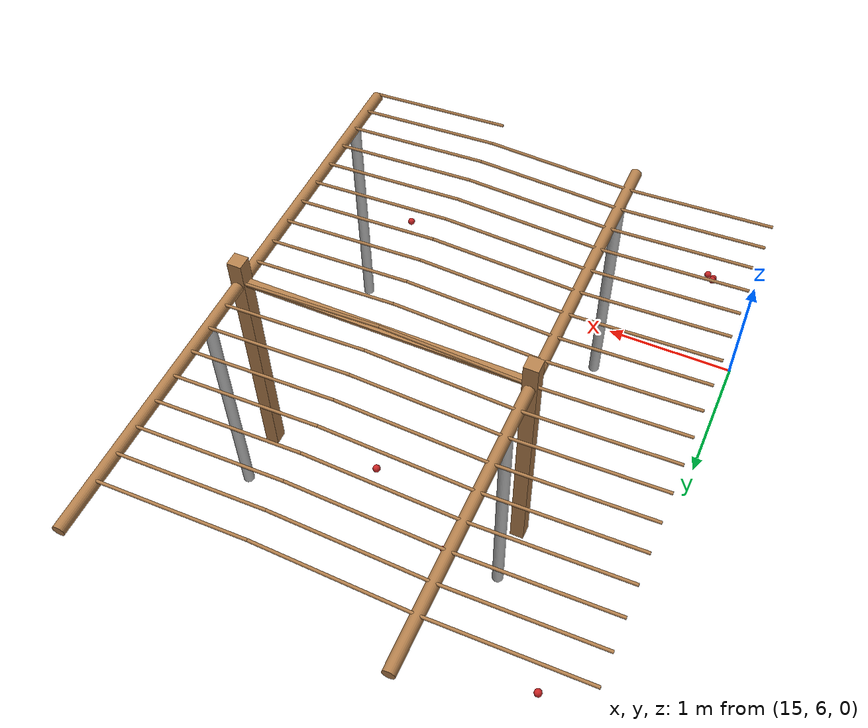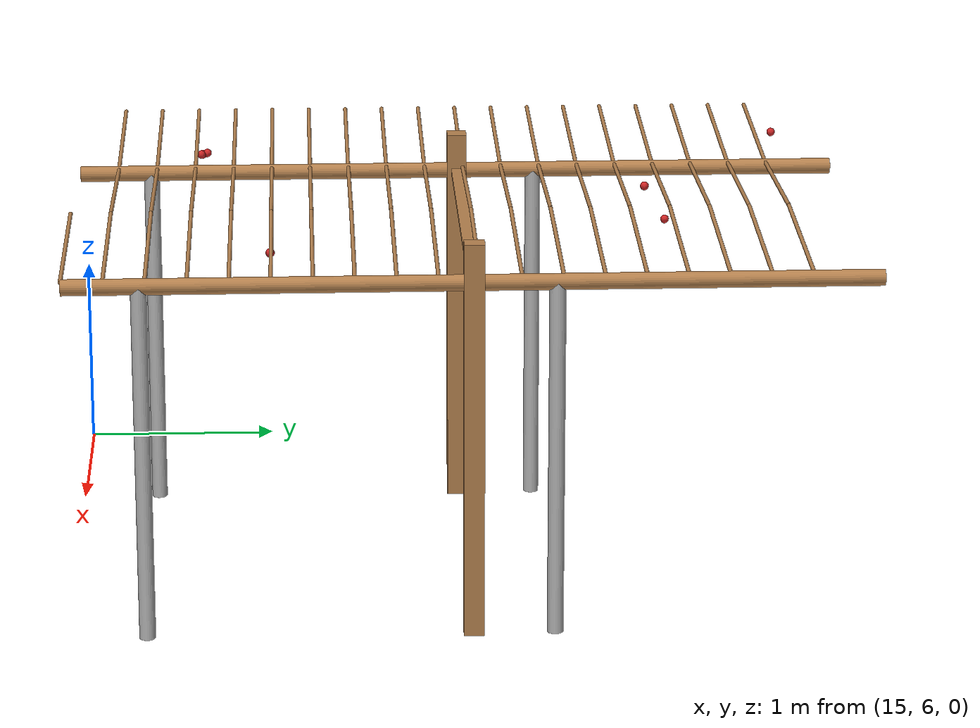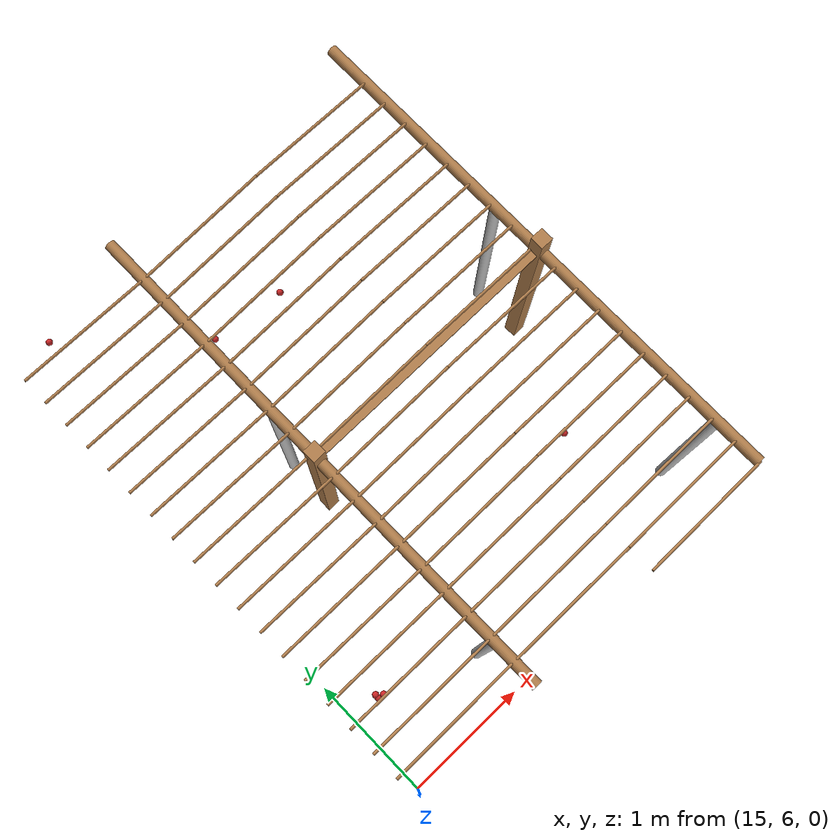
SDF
<sdf version="1.4">
 <model name="pergola">
  <include><name>post_92</name><pose>16.0 8.0 0 0 0 0</pose><uri>model://post</uri></include>
  <include><name>post_103</name><pose>18.0 8.0 0 0 0 0</pose><uri>model://post</uri></include>
  <link name="beam_92">
   <pose>17.0 8.0 1.81 0 0 0</pose>
   <collision name="collision"><geometry><box><size>2.0 0.06 0.02</size></box></geometry></collision>
   <visual name="visual">
    <geometry><box><size>2.0 0.06 0.02</size></box></geometry>
    <material><script><name>Gazebo/Wood</name></script></material>
   </visual>
   <inertial>
    <mass>5</mass>
    <inertia>
     <ixx>0.0016666666666666668</ixx>
     <ixy>0.0</ixy>
     <ixz>0.0</ixz>
     <iyy>1.6681666666666664</iyy>
     <iyz>0.0</iyz>
     <izz>1.6668333333333332</izz>
    </inertia>
   </inertial>
  </link>
  <include><name>tree_83</name><pose>16.0 6.4 0 0 0 0</pose><uri>model://tree_trunk</uri></include>
  <include><name>tree_84</name><pose>16.0 8.4 0 0 0 0</pose><uri>model://tree_trunk</uri></include>
  <include><name>tree_93</name><pose>18.0 6.4 0 0 0 0</pose><uri>model://tree_trunk</uri></include>
  <include><name>tree_94</name><pose>18.0 8.4 0 0 0 0</pose><uri>model://tree_trunk</uri></include>
  <link name="baseBranch_83">
   <pose>16.0 7.0 1.8 1.5707963267948966 0 0</pose>
   <collision name="collision">
    <geometry><cylinder><radius>0.04</radius><length>1.94</length></cylinder></geometry>
   </collision>
   <visual name="visual">
    <geometry><cylinder><radius>0.04</radius><length>1.94</length></cylinder></geometry>
    <material><script><name>Gazebo/WoodFloor</name></script></material>
   </visual>
   <inertial>
    <mass>10</mass>
    <inertia>
     <ixx>3.140333333333333</ixx>
     <ixy>0.0</ixy>
     <ixz>0.0</ixz>
     <iyy>3.140333333333333</iyy>
     <iyz>0.0</iyz>
     <izz>0.008</izz>
    </inertia>
   </inertial>
  </link>
  <link name="baseBranch_84">
   <pose>16.0 9.0 1.8 1.5707963267948966 0 0</pose>
   <collision name="collision">
    <geometry><cylinder><radius>0.04</radius><length>1.94</length></cylinder></geometry>
   </collision>
   <visual name="visual">
    <geometry><cylinder><radius>0.04</radius><length>1.94</length></cylinder></geometry>
    <material><script><name>Gazebo/WoodFloor</name></script></material>
   </visual>
   <inertial>
    <mass>10</mass>
    <inertia>
     <ixx>3.140333333333333</ixx>
     <ixy>0.0</ixy>
     <ixz>0.0</ixz>
     <iyy>3.140333333333333</iyy>
     <iyz>0.0</iyz>
     <izz>0.008</izz>
    </inertia>
   </inertial>
  </link>
  <link name="baseBranch_93">
   <pose>18.0 7.0 1.8 1.5707963267948966 0 0</pose>
   <collision name="collision">
    <geometry><cylinder><radius>0.04</radius><length>1.94</length></cylinder></geometry>
   </collision>
   <visual name="visual">
    <geometry><cylinder><radius>0.04</radius><length>1.94</length></cylinder></geometry>
    <material><script><name>Gazebo/WoodFloor</name></script></material>
   </visual>
   <inertial>
    <mass>10</mass>
    <inertia>
     <ixx>3.140333333333333</ixx>
     <ixy>0.0</ixy>
     <ixz>0.0</ixz>
     <iyy>3.140333333333333</iyy>
     <iyz>0.0</iyz>
     <izz>0.008</izz>
    </inertia>
   </inertial>
  </link>
  <link name="baseBranch_94">
   <pose>18.0 9.0 1.8 1.5707963267948966 0 0</pose>
   <collision name="collision">
    <geometry><cylinder><radius>0.04</radius><length>1.94</length></cylinder></geometry>
   </collision>
   <visual name="visual">
    <geometry><cylinder><radius>0.04</radius><length>1.94</length></cylinder></geometry>
    <material><script><name>Gazebo/WoodFloor</name></script></material>
   </visual>
   <inertial>
    <mass>10</mass>
    <inertia>
     <ixx>3.140333333333333</ixx>
     <ixy>0.0</ixy>
     <ixz>0.0</ixz>
     <iyy>3.140333333333333</iyy>
     <iyz>0.0</iyz>
     <izz>0.008</izz>
    </inertia>
   </inertial>
  </link>
  <link name="vine_1463">
   <pose>15.5 6.23 1.85 0 -1.5208379310729538 0</pose>
   <collision name="collision">
    <geometry><cylinder><radius>0.01</radius><length>1.0012492197250393</length></cylinder></geometry>
   </collision>
   <visual name="visual">
    <geometry><cylinder><radius>0.01</radius><length>1.0012492197250393</length></cylinder></geometry>
    <material><script><name>Gazebo/WoodFloor</name></script></material>
   </visual>
   <inertial>
    <mass>5</mass>
    <inertia>
     <ixx>0.41783333333333345</ixx>
     <ixy>0.0</ixy>
     <ixz>0.0</ixz>
     <iyy>0.41783333333333345</iyy>
     <iyz>0.0</iyz>
     <izz>0.00025</izz>
    </inertia>
   </inertial>
  </link>
  <link name="vine_1465">
   <pose>15.5 6.430000000000001 1.85 0 -1.5208379310729538 0</pose>
   <collision name="collision">
    <geometry><cylinder><radius>0.01</radius><length>1.0012492197250393</length></cylinder></geometry>
   </collision>
   <visual name="visual">
    <geometry><cylinder><radius>0.01</radius><length>1.0012492197250393</length></cylinder></geometry>
    <material><script><name>Gazebo/WoodFloor</name></script></material>
   </visual>
   <inertial>
    <mass>5</mass>
    <inertia>
     <ixx>0.41783333333333345</ixx>
     <ixy>0.0</ixy>
     <ixz>0.0</ixz>
     <iyy>0.41783333333333345</iyy>
     <iyz>0.0</iyz>
     <izz>0.00025</izz>
    </inertia>
   </inertial>
  </link>
  <link name="vine_1467">
   <pose>15.5 6.630000000000001 1.85 0 -1.5208379310729538 0</pose>
   <collision name="collision">
    <geometry><cylinder><radius>0.01</radius><length>1.0012492197250393</length></cylinder></geometry>
   </collision>
   <visual name="visual">
    <geometry><cylinder><radius>0.01</radius><length>1.0012492197250393</length></cylinder></geometry>
    <material><script><name>Gazebo/WoodFloor</name></script></material>
   </visual>
   <inertial>
    <mass>5</mass>
    <inertia>
     <ixx>0.41783333333333345</ixx>
     <ixy>0.0</ixy>
     <ixz>0.0</ixz>
     <iyy>0.41783333333333345</iyy>
     <iyz>0.0</iyz>
     <izz>0.00025</izz>
    </inertia>
   </inertial>
  </link>
  <link name="vine_1469">
   <pose>15.5 6.830000000000001 1.85 0 -1.5208379310729538 0</pose>
   <collision name="collision">
    <geometry><cylinder><radius>0.01</radius><length>1.0012492197250393</length></cylinder></geometry>
   </collision>
   <visual name="visual">
    <geometry><cylinder><radius>0.01</radius><length>1.0012492197250393</length></cylinder></geometry>
    <material><script><name>Gazebo/WoodFloor</name></script></material>
   </visual>
   <inertial>
    <mass>5</mass>
    <inertia>
     <ixx>0.41783333333333345</ixx>
     <ixy>0.0</ixy>
     <ixz>0.0</ixz>
     <iyy>0.41783333333333345</iyy>
     <iyz>0.0</iyz>
     <izz>0.00025</izz>
    </inertia>
   </inertial>
  </link>
  <link name="vine_1471">
   <pose>15.5 7.03 1.85 0 -1.5208379310729538 0</pose>
   <collision name="collision">
    <geometry><cylinder><radius>0.01</radius><length>1.0012492197250393</length></cylinder></geometry>
   </collision>
   <visual name="visual">
    <geometry><cylinder><radius>0.01</radius><length>1.0012492197250393</length></cylinder></geometry>
    <material><script><name>Gazebo/WoodFloor</name></script></material>
   </visual>
   <inertial>
    <mass>5</mass>
    <inertia>
     <ixx>0.41783333333333345</ixx>
     <ixy>0.0</ixy>
     <ixz>0.0</ixz>
     <iyy>0.41783333333333345</iyy>
     <iyz>0.0</iyz>
     <izz>0.00025</izz>
    </inertia>
   </inertial>
  </link>
  <link name="vine_1473">
   <pose>15.5 7.23 1.85 0 -1.5208379310729538 0</pose>
   <collision name="collision">
    <geometry><cylinder><radius>0.01</radius><length>1.0012492197250393</length></cylinder></geometry>
   </collision>
   <visual name="visual">
    <geometry><cylinder><radius>0.01</radius><length>1.0012492197250393</length></cylinder></geometry>
    <material><script><name>Gazebo/WoodFloor</name></script></material>
   </visual>
   <inertial>
    <mass>5</mass>
    <inertia>
     <ixx>0.41783333333333345</ixx>
     <ixy>0.0</ixy>
     <ixz>0.0</ixz>
     <iyy>0.41783333333333345</iyy>
     <iyz>0.0</iyz>
     <izz>0.00025</izz>
    </inertia>
   </inertial>
  </link>
  <link name="vine_1475">
   <pose>15.5 7.430000000000001 1.85 0 -1.5208379310729538 0</pose>
   <collision name="collision">
    <geometry><cylinder><radius>0.01</radius><length>1.0012492197250393</length></cylinder></geometry>
   </collision>
   <visual name="visual">
    <geometry><cylinder><radius>0.01</radius><length>1.0012492197250393</length></cylinder></geometry>
    <material><script><name>Gazebo/WoodFloor</name></script></material>
   </visual>
   <inertial>
    <mass>5</mass>
    <inertia>
     <ixx>0.41783333333333345</ixx>
     <ixy>0.0</ixy>
     <ixz>0.0</ixz>
     <iyy>0.41783333333333345</iyy>
     <iyz>0.0</iyz>
     <izz>0.00025</izz>
    </inertia>
   </inertial>
  </link>
  <link name="vine_1477">
   <pose>15.5 7.630000000000001 1.85 0 -1.5208379310729538 0</pose>
   <collision name="collision">
    <geometry><cylinder><radius>0.01</radius><length>1.0012492197250393</length></cylinder></geometry>
   </collision>
   <visual name="visual">
    <geometry><cylinder><radius>0.01</radius><length>1.0012492197250393</length></cylinder></geometry>
    <material><script><name>Gazebo/WoodFloor</name></script></material>
   </visual>
   <inertial>
    <mass>5</mass>
    <inertia>
     <ixx>0.41783333333333345</ixx>
     <ixy>0.0</ixy>
     <ixz>0.0</ixz>
     <iyy>0.41783333333333345</iyy>
     <iyz>0.0</iyz>
     <izz>0.00025</izz>
    </inertia>
   </inertial>
  </link>
  <link name="vine_1479">
   <pose>15.5 7.830000000000001 1.85 0 -1.5208379310729538 0</pose>
   <collision name="collision">
    <geometry><cylinder><radius>0.01</radius><length>1.0012492197250393</length></cylinder></geometry>
   </collision>
   <visual name="visual">
    <geometry><cylinder><radius>0.01</radius><length>1.0012492197250393</length></cylinder></geometry>
    <material><script><name>Gazebo/WoodFloor</name></script></material>
   </visual>
   <inertial>
    <mass>5</mass>
    <inertia>
     <ixx>0.41783333333333345</ixx>
     <ixy>0.0</ixy>
     <ixz>0.0</ixz>
     <iyy>0.41783333333333345</iyy>
     <iyz>0.0</iyz>
     <izz>0.00025</izz>
    </inertia>
   </inertial>
  </link>
  <link name="vine_1481">
   <pose>15.5 8.03 1.85 0 -1.5208379310729538 0</pose>
   <collision name="collision">
    <geometry><cylinder><radius>0.01</radius><length>1.0012492197250393</length></cylinder></geometry>
   </collision>
   <visual name="visual">
    <geometry><cylinder><radius>0.01</radius><length>1.0012492197250393</length></cylinder></geometry>
    <material><script><name>Gazebo/WoodFloor</name></script></material>
   </visual>
   <inertial>
    <mass>5</mass>
    <inertia>
     <ixx>0.41783333333333345</ixx>
     <ixy>0.0</ixy>
     <ixz>0.0</ixz>
     <iyy>0.41783333333333345</iyy>
     <iyz>0.0</iyz>
     <izz>0.00025</izz>
    </inertia>
   </inertial>
  </link>
  <link name="vine_1483">
   <pose>15.5 8.23 1.85 0 -1.5208379310729538 0</pose>
   <collision name="collision">
    <geometry><cylinder><radius>0.01</radius><length>1.0012492197250393</length></cylinder></geometry>
   </collision>
   <visual name="visual">
    <geometry><cylinder><radius>0.01</radius><length>1.0012492197250393</length></cylinder></geometry>
    <material><script><name>Gazebo/WoodFloor</name></script></material>
   </visual>
   <inertial>
    <mass>5</mass>
    <inertia>
     <ixx>0.41783333333333345</ixx>
     <ixy>0.0</ixy>
     <ixz>0.0</ixz>
     <iyy>0.41783333333333345</iyy>
     <iyz>0.0</iyz>
     <izz>0.00025</izz>
    </inertia>
   </inertial>
  </link>
  <link name="vine_1485">
   <pose>15.5 8.43 1.85 0 -1.5208379310729538 0</pose>
   <collision name="collision">
    <geometry><cylinder><radius>0.01</radius><length>1.0012492197250393</length></cylinder></geometry>
   </collision>
   <visual name="visual">
    <geometry><cylinder><radius>0.01</radius><length>1.0012492197250393</length></cylinder></geometry>
    <material><script><name>Gazebo/WoodFloor</name></script></material>
   </visual>
   <inertial>
    <mass>5</mass>
    <inertia>
     <ixx>0.41783333333333345</ixx>
     <ixy>0.0</ixy>
     <ixz>0.0</ixz>
     <iyy>0.41783333333333345</iyy>
     <iyz>0.0</iyz>
     <izz>0.00025</izz>
    </inertia>
   </inertial>
  </link>
  <link name="vine_1487">
   <pose>15.5 8.629999999999999 1.85 0 -1.5208379310729538 0</pose>
   <collision name="collision">
    <geometry><cylinder><radius>0.01</radius><length>1.0012492197250393</length></cylinder></geometry>
   </collision>
   <visual name="visual">
    <geometry><cylinder><radius>0.01</radius><length>1.0012492197250393</length></cylinder></geometry>
    <material><script><name>Gazebo/WoodFloor</name></script></material>
   </visual>
   <inertial>
    <mass>5</mass>
    <inertia>
     <ixx>0.41783333333333345</ixx>
     <ixy>0.0</ixy>
     <ixz>0.0</ixz>
     <iyy>0.41783333333333345</iyy>
     <iyz>0.0</iyz>
     <izz>0.00025</izz>
    </inertia>
   </inertial>
  </link>
  <link name="vine_1489">
   <pose>15.5 8.83 1.85 0 -1.5208379310729538 0</pose>
   <collision name="collision">
    <geometry><cylinder><radius>0.01</radius><length>1.0012492197250393</length></cylinder></geometry>
   </collision>
   <visual name="visual">
    <geometry><cylinder><radius>0.01</radius><length>1.0012492197250393</length></cylinder></geometry>
    <material><script><name>Gazebo/WoodFloor</name></script></material>
   </visual>
   <inertial>
    <mass>5</mass>
    <inertia>
     <ixx>0.41783333333333345</ixx>
     <ixy>0.0</ixy>
     <ixz>0.0</ixz>
     <iyy>0.41783333333333345</iyy>
     <iyz>0.0</iyz>
     <izz>0.00025</izz>
    </inertia>
   </inertial>
  </link>
  <link name="vine_1491">
   <pose>15.5 9.03 1.85 0 -1.5208379310729538 0</pose>
   <collision name="collision">
    <geometry><cylinder><radius>0.01</radius><length>1.0012492197250393</length></cylinder></geometry>
   </collision>
   <visual name="visual">
    <geometry><cylinder><radius>0.01</radius><length>1.0012492197250393</length></cylinder></geometry>
    <material><script><name>Gazebo/WoodFloor</name></script></material>
   </visual>
   <inertial>
    <mass>5</mass>
    <inertia>
     <ixx>0.41783333333333345</ixx>
     <ixy>0.0</ixy>
     <ixz>0.0</ixz>
     <iyy>0.41783333333333345</iyy>
     <iyz>0.0</iyz>
     <izz>0.00025</izz>
    </inertia>
   </inertial>
  </link>
  <link name="vine_1493">
   <pose>15.5 9.23 1.85 0 -1.5208379310729538 0</pose>
   <collision name="collision">
    <geometry><cylinder><radius>0.01</radius><length>1.0012492197250393</length></cylinder></geometry>
   </collision>
   <visual name="visual">
    <geometry><cylinder><radius>0.01</radius><length>1.0012492197250393</length></cylinder></geometry>
    <material><script><name>Gazebo/WoodFloor</name></script></material>
   </visual>
   <inertial>
    <mass>5</mass>
    <inertia>
     <ixx>0.41783333333333345</ixx>
     <ixy>0.0</ixy>
     <ixz>0.0</ixz>
     <iyy>0.41783333333333345</iyy>
     <iyz>0.0</iyz>
     <izz>0.00025</izz>
    </inertia>
   </inertial>
  </link>
  <link name="vine_1495">
   <pose>15.5 9.43 1.85 0 -1.5208379310729538 0</pose>
   <collision name="collision">
    <geometry><cylinder><radius>0.01</radius><length>1.0012492197250393</length></cylinder></geometry>
   </collision>
   <visual name="visual">
    <geometry><cylinder><radius>0.01</radius><length>1.0012492197250393</length></cylinder></geometry>
    <material><script><name>Gazebo/WoodFloor</name></script></material>
   </visual>
   <inertial>
    <mass>5</mass>
    <inertia>
     <ixx>0.41783333333333345</ixx>
     <ixy>0.0</ixy>
     <ixz>0.0</ixz>
     <iyy>0.41783333333333345</iyy>
     <iyz>0.0</iyz>
     <izz>0.00025</izz>
    </inertia>
   </inertial>
  </link>
  <link name="vine_1497">
   <pose>15.5 9.63 1.85 0 -1.5208379310729538 0</pose>
   <collision name="collision">
    <geometry><cylinder><radius>0.01</radius><length>1.0012492197250393</length></cylinder></geometry>
   </collision>
   <visual name="visual">
    <geometry><cylinder><radius>0.01</radius><length>1.0012492197250393</length></cylinder></geometry>
    <material><script><name>Gazebo/WoodFloor</name></script></material>
   </visual>
   <inertial>
    <mass>5</mass>
    <inertia>
     <ixx>0.41783333333333345</ixx>
     <ixy>0.0</ixy>
     <ixz>0.0</ixz>
     <iyy>0.41783333333333345</iyy>
     <iyz>0.0</iyz>
     <izz>0.00025</izz>
    </inertia>
   </inertial>
  </link>
  <link name="vine_1661">
   <pose>17.5 6.03 1.85 0 -1.5208379310729538 0</pose>
   <collision name="collision">
    <geometry><cylinder><radius>0.01</radius><length>1.0012492197250393</length></cylinder></geometry>
   </collision>
   <visual name="visual">
    <geometry><cylinder><radius>0.01</radius><length>1.0012492197250393</length></cylinder></geometry>
    <material><script><name>Gazebo/WoodFloor</name></script></material>
   </visual>
   <inertial>
    <mass>5</mass>
    <inertia>
     <ixx>0.41783333333333345</ixx>
     <ixy>0.0</ixy>
     <ixz>0.0</ixz>
     <iyy>0.41783333333333345</iyy>
     <iyz>0.0</iyz>
     <izz>0.00025</izz>
    </inertia>
   </inertial>
  </link>
  <link name="vine_1662">
   <pose>16.5 6.23 1.85 0 1.5208379310729538 0</pose>
   <collision name="collision">
    <geometry><cylinder><radius>0.01</radius><length>1.0012492197250393</length></cylinder></geometry>
   </collision>
   <visual name="visual">
    <geometry><cylinder><radius>0.01</radius><length>1.0012492197250393</length></cylinder></geometry>
    <material><script><name>Gazebo/WoodFloor</name></script></material>
   </visual>
   <inertial>
    <mass>5</mass>
    <inertia>
     <ixx>0.41783333333333345</ixx>
     <ixy>0.0</ixy>
     <ixz>0.0</ixz>
     <iyy>0.41783333333333345</iyy>
     <iyz>0.0</iyz>
     <izz>0.00025</izz>
    </inertia>
   </inertial>
  </link>
  <link name="vine_1663">
   <pose>17.5 6.23 1.85 0 -1.5208379310729538 0</pose>
   <collision name="collision">
    <geometry><cylinder><radius>0.01</radius><length>1.0012492197250393</length></cylinder></geometry>
   </collision>
   <visual name="visual">
    <geometry><cylinder><radius>0.01</radius><length>1.0012492197250393</length></cylinder></geometry>
    <material><script><name>Gazebo/WoodFloor</name></script></material>
   </visual>
   <inertial>
    <mass>5</mass>
    <inertia>
     <ixx>0.41783333333333345</ixx>
     <ixy>0.0</ixy>
     <ixz>0.0</ixz>
     <iyy>0.41783333333333345</iyy>
     <iyz>0.0</iyz>
     <izz>0.00025</izz>
    </inertia>
   </inertial>
  </link>
  <link name="vine_1664">
   <pose>16.5 6.430000000000001 1.85 0 1.5208379310729538 0</pose>
   <collision name="collision">
    <geometry><cylinder><radius>0.01</radius><length>1.0012492197250393</length></cylinder></geometry>
   </collision>
   <visual name="visual">
    <geometry><cylinder><radius>0.01</radius><length>1.0012492197250393</length></cylinder></geometry>
    <material><script><name>Gazebo/WoodFloor</name></script></material>
   </visual>
   <inertial>
    <mass>5</mass>
    <inertia>
     <ixx>0.41783333333333345</ixx>
     <ixy>0.0</ixy>
     <ixz>0.0</ixz>
     <iyy>0.41783333333333345</iyy>
     <iyz>0.0</iyz>
     <izz>0.00025</izz>
    </inertia>
   </inertial>
  </link>
  <link name="vine_1665">
   <pose>17.5 6.430000000000001 1.85 0 -1.5208379310729538 0</pose>
   <collision name="collision">
    <geometry><cylinder><radius>0.01</radius><length>1.0012492197250393</length></cylinder></geometry>
   </collision>
   <visual name="visual">
    <geometry><cylinder><radius>0.01</radius><length>1.0012492197250393</length></cylinder></geometry>
    <material><script><name>Gazebo/WoodFloor</name></script></material>
   </visual>
   <inertial>
    <mass>5</mass>
    <inertia>
     <ixx>0.41783333333333345</ixx>
     <ixy>0.0</ixy>
     <ixz>0.0</ixz>
     <iyy>0.41783333333333345</iyy>
     <iyz>0.0</iyz>
     <izz>0.00025</izz>
    </inertia>
   </inertial>
  </link>
  <link name="vine_1666">
   <pose>16.5 6.630000000000001 1.85 0 1.5208379310729538 0</pose>
   <collision name="collision">
    <geometry><cylinder><radius>0.01</radius><length>1.0012492197250393</length></cylinder></geometry>
   </collision>
   <visual name="visual">
    <geometry><cylinder><radius>0.01</radius><length>1.0012492197250393</length></cylinder></geometry>
    <material><script><name>Gazebo/WoodFloor</name></script></material>
   </visual>
   <inertial>
    <mass>5</mass>
    <inertia>
     <ixx>0.41783333333333345</ixx>
     <ixy>0.0</ixy>
     <ixz>0.0</ixz>
     <iyy>0.41783333333333345</iyy>
     <iyz>0.0</iyz>
     <izz>0.00025</izz>
    </inertia>
   </inertial>
  </link>
  <link name="vine_1667">
   <pose>17.5 6.630000000000001 1.85 0 -1.5208379310729538 0</pose>
   <collision name="collision">
    <geometry><cylinder><radius>0.01</radius><length>1.0012492197250393</length></cylinder></geometry>
   </collision>
   <visual name="visual">
    <geometry><cylinder><radius>0.01</radius><length>1.0012492197250393</length></cylinder></geometry>
    <material><script><name>Gazebo/WoodFloor</name></script></material>
   </visual>
   <inertial>
    <mass>5</mass>
    <inertia>
     <ixx>0.41783333333333345</ixx>
     <ixy>0.0</ixy>
     <ixz>0.0</ixz>
     <iyy>0.41783333333333345</iyy>
     <iyz>0.0</iyz>
     <izz>0.00025</izz>
    </inertia>
   </inertial>
  </link>
  <link name="vine_1668">
   <pose>16.5 6.830000000000001 1.85 0 1.5208379310729538 0</pose>
   <collision name="collision">
    <geometry><cylinder><radius>0.01</radius><length>1.0012492197250393</length></cylinder></geometry>
   </collision>
   <visual name="visual">
    <geometry><cylinder><radius>0.01</radius><length>1.0012492197250393</length></cylinder></geometry>
    <material><script><name>Gazebo/WoodFloor</name></script></material>
   </visual>
   <inertial>
    <mass>5</mass>
    <inertia>
     <ixx>0.41783333333333345</ixx>
     <ixy>0.0</ixy>
     <ixz>0.0</ixz>
     <iyy>0.41783333333333345</iyy>
     <iyz>0.0</iyz>
     <izz>0.00025</izz>
    </inertia>
   </inertial>
  </link>
  <link name="vine_1669">
   <pose>17.5 6.830000000000001 1.85 0 -1.5208379310729538 0</pose>
   <collision name="collision">
    <geometry><cylinder><radius>0.01</radius><length>1.0012492197250393</length></cylinder></geometry>
   </collision>
   <visual name="visual">
    <geometry><cylinder><radius>0.01</radius><length>1.0012492197250393</length></cylinder></geometry>
    <material><script><name>Gazebo/WoodFloor</name></script></material>
   </visual>
   <inertial>
    <mass>5</mass>
    <inertia>
     <ixx>0.41783333333333345</ixx>
     <ixy>0.0</ixy>
     <ixz>0.0</ixz>
     <iyy>0.41783333333333345</iyy>
     <iyz>0.0</iyz>
     <izz>0.00025</izz>
    </inertia>
   </inertial>
  </link>
  <link name="vine_1670">
   <pose>16.5 7.03 1.85 0 1.5208379310729538 0</pose>
   <collision name="collision">
    <geometry><cylinder><radius>0.01</radius><length>1.0012492197250393</length></cylinder></geometry>
   </collision>
   <visual name="visual">
    <geometry><cylinder><radius>0.01</radius><length>1.0012492197250393</length></cylinder></geometry>
    <material><script><name>Gazebo/WoodFloor</name></script></material>
   </visual>
   <inertial>
    <mass>5</mass>
    <inertia>
     <ixx>0.41783333333333345</ixx>
     <ixy>0.0</ixy>
     <ixz>0.0</ixz>
     <iyy>0.41783333333333345</iyy>
     <iyz>0.0</iyz>
     <izz>0.00025</izz>
    </inertia>
   </inertial>
  </link>
  <link name="vine_1671">
   <pose>17.5 7.03 1.85 0 -1.5208379310729538 0</pose>
   <collision name="collision">
    <geometry><cylinder><radius>0.01</radius><length>1.0012492197250393</length></cylinder></geometry>
   </collision>
   <visual name="visual">
    <geometry><cylinder><radius>0.01</radius><length>1.0012492197250393</length></cylinder></geometry>
    <material><script><name>Gazebo/WoodFloor</name></script></material>
   </visual>
   <inertial>
    <mass>5</mass>
    <inertia>
     <ixx>0.41783333333333345</ixx>
     <ixy>0.0</ixy>
     <ixz>0.0</ixz>
     <iyy>0.41783333333333345</iyy>
     <iyz>0.0</iyz>
     <izz>0.00025</izz>
    </inertia>
   </inertial>
  </link>
  <link name="vine_1672">
   <pose>16.5 7.23 1.85 0 1.5208379310729538 0</pose>
   <collision name="collision">
    <geometry><cylinder><radius>0.01</radius><length>1.0012492197250393</length></cylinder></geometry>
   </collision>
   <visual name="visual">
    <geometry><cylinder><radius>0.01</radius><length>1.0012492197250393</length></cylinder></geometry>
    <material><script><name>Gazebo/WoodFloor</name></script></material>
   </visual>
   <inertial>
    <mass>5</mass>
    <inertia>
     <ixx>0.41783333333333345</ixx>
     <ixy>0.0</ixy>
     <ixz>0.0</ixz>
     <iyy>0.41783333333333345</iyy>
     <iyz>0.0</iyz>
     <izz>0.00025</izz>
    </inertia>
   </inertial>
  </link>
  <link name="vine_1673">
   <pose>17.5 7.23 1.85 0 -1.5208379310729538 0</pose>
   <collision name="collision">
    <geometry><cylinder><radius>0.01</radius><length>1.0012492197250393</length></cylinder></geometry>
   </collision>
   <visual name="visual">
    <geometry><cylinder><radius>0.01</radius><length>1.0012492197250393</length></cylinder></geometry>
    <material><script><name>Gazebo/WoodFloor</name></script></material>
   </visual>
   <inertial>
    <mass>5</mass>
    <inertia>
     <ixx>0.41783333333333345</ixx>
     <ixy>0.0</ixy>
     <ixz>0.0</ixz>
     <iyy>0.41783333333333345</iyy>
     <iyz>0.0</iyz>
     <izz>0.00025</izz>
    </inertia>
   </inertial>
  </link>
  <link name="vine_1674">
   <pose>16.5 7.430000000000001 1.85 0 1.5208379310729538 0</pose>
   <collision name="collision">
    <geometry><cylinder><radius>0.01</radius><length>1.0012492197250393</length></cylinder></geometry>
   </collision>
   <visual name="visual">
    <geometry><cylinder><radius>0.01</radius><length>1.0012492197250393</length></cylinder></geometry>
    <material><script><name>Gazebo/WoodFloor</name></script></material>
   </visual>
   <inertial>
    <mass>5</mass>
    <inertia>
     <ixx>0.41783333333333345</ixx>
     <ixy>0.0</ixy>
     <ixz>0.0</ixz>
     <iyy>0.41783333333333345</iyy>
     <iyz>0.0</iyz>
     <izz>0.00025</izz>
    </inertia>
   </inertial>
  </link>
  <link name="vine_1675">
   <pose>17.5 7.430000000000001 1.85 0 -1.5208379310729538 0</pose>
   <collision name="collision">
    <geometry><cylinder><radius>0.01</radius><length>1.0012492197250393</length></cylinder></geometry>
   </collision>
   <visual name="visual">
    <geometry><cylinder><radius>0.01</radius><length>1.0012492197250393</length></cylinder></geometry>
    <material><script><name>Gazebo/WoodFloor</name></script></material>
   </visual>
   <inertial>
    <mass>5</mass>
    <inertia>
     <ixx>0.41783333333333345</ixx>
     <ixy>0.0</ixy>
     <ixz>0.0</ixz>
     <iyy>0.41783333333333345</iyy>
     <iyz>0.0</iyz>
     <izz>0.00025</izz>
    </inertia>
   </inertial>
  </link>
  <link name="vine_1676">
   <pose>16.5 7.630000000000001 1.85 0 1.5208379310729538 0</pose>
   <collision name="collision">
    <geometry><cylinder><radius>0.01</radius><length>1.0012492197250393</length></cylinder></geometry>
   </collision>
   <visual name="visual">
    <geometry><cylinder><radius>0.01</radius><length>1.0012492197250393</length></cylinder></geometry>
    <material><script><name>Gazebo/WoodFloor</name></script></material>
   </visual>
   <inertial>
    <mass>5</mass>
    <inertia>
     <ixx>0.41783333333333345</ixx>
     <ixy>0.0</ixy>
     <ixz>0.0</ixz>
     <iyy>0.41783333333333345</iyy>
     <iyz>0.0</iyz>
     <izz>0.00025</izz>
    </inertia>
   </inertial>
  </link>
  <link name="vine_1677">
   <pose>17.5 7.630000000000001 1.85 0 -1.5208379310729538 0</pose>
   <collision name="collision">
    <geometry><cylinder><radius>0.01</radius><length>1.0012492197250393</length></cylinder></geometry>
   </collision>
   <visual name="visual">
    <geometry><cylinder><radius>0.01</radius><length>1.0012492197250393</length></cylinder></geometry>
    <material><script><name>Gazebo/WoodFloor</name></script></material>
   </visual>
   <inertial>
    <mass>5</mass>
    <inertia>
     <ixx>0.41783333333333345</ixx>
     <ixy>0.0</ixy>
     <ixz>0.0</ixz>
     <iyy>0.41783333333333345</iyy>
     <iyz>0.0</iyz>
     <izz>0.00025</izz>
    </inertia>
   </inertial>
  </link>
  <link name="vine_1678">
   <pose>16.5 7.830000000000001 1.85 0 1.5208379310729538 0</pose>
   <collision name="collision">
    <geometry><cylinder><radius>0.01</radius><length>1.0012492197250393</length></cylinder></geometry>
   </collision>
   <visual name="visual">
    <geometry><cylinder><radius>0.01</radius><length>1.0012492197250393</length></cylinder></geometry>
    <material><script><name>Gazebo/WoodFloor</name></script></material>
   </visual>
   <inertial>
    <mass>5</mass>
    <inertia>
     <ixx>0.41783333333333345</ixx>
     <ixy>0.0</ixy>
     <ixz>0.0</ixz>
     <iyy>0.41783333333333345</iyy>
     <iyz>0.0</iyz>
     <izz>0.00025</izz>
    </inertia>
   </inertial>
  </link>
  <link name="vine_1679">
   <pose>17.5 7.830000000000001 1.85 0 -1.5208379310729538 0</pose>
   <collision name="collision">
    <geometry><cylinder><radius>0.01</radius><length>1.0012492197250393</length></cylinder></geometry>
   </collision>
   <visual name="visual">
    <geometry><cylinder><radius>0.01</radius><length>1.0012492197250393</length></cylinder></geometry>
    <material><script><name>Gazebo/WoodFloor</name></script></material>
   </visual>
   <inertial>
    <mass>5</mass>
    <inertia>
     <ixx>0.41783333333333345</ixx>
     <ixy>0.0</ixy>
     <ixz>0.0</ixz>
     <iyy>0.41783333333333345</iyy>
     <iyz>0.0</iyz>
     <izz>0.00025</izz>
    </inertia>
   </inertial>
  </link>
  <link name="vine_1680">
   <pose>16.5 8.03 1.85 0 1.5208379310729538 0</pose>
   <collision name="collision">
    <geometry><cylinder><radius>0.01</radius><length>1.0012492197250393</length></cylinder></geometry>
   </collision>
   <visual name="visual">
    <geometry><cylinder><radius>0.01</radius><length>1.0012492197250393</length></cylinder></geometry>
    <material><script><name>Gazebo/WoodFloor</name></script></material>
   </visual>
   <inertial>
    <mass>5</mass>
    <inertia>
     <ixx>0.41783333333333345</ixx>
     <ixy>0.0</ixy>
     <ixz>0.0</ixz>
     <iyy>0.41783333333333345</iyy>
     <iyz>0.0</iyz>
     <izz>0.00025</izz>
    </inertia>
   </inertial>
  </link>
  <link name="vine_1681">
   <pose>17.5 8.03 1.85 0 -1.5208379310729538 0</pose>
   <collision name="collision">
    <geometry><cylinder><radius>0.01</radius><length>1.0012492197250393</length></cylinder></geometry>
   </collision>
   <visual name="visual">
    <geometry><cylinder><radius>0.01</radius><length>1.0012492197250393</length></cylinder></geometry>
    <material><script><name>Gazebo/WoodFloor</name></script></material>
   </visual>
   <inertial>
    <mass>5</mass>
    <inertia>
     <ixx>0.41783333333333345</ixx>
     <ixy>0.0</ixy>
     <ixz>0.0</ixz>
     <iyy>0.41783333333333345</iyy>
     <iyz>0.0</iyz>
     <izz>0.00025</izz>
    </inertia>
   </inertial>
  </link>
  <link name="vine_1682">
   <pose>16.5 8.23 1.85 0 1.5208379310729538 0</pose>
   <collision name="collision">
    <geometry><cylinder><radius>0.01</radius><length>1.0012492197250393</length></cylinder></geometry>
   </collision>
   <visual name="visual">
    <geometry><cylinder><radius>0.01</radius><length>1.0012492197250393</length></cylinder></geometry>
    <material><script><name>Gazebo/WoodFloor</name></script></material>
   </visual>
   <inertial>
    <mass>5</mass>
    <inertia>
     <ixx>0.41783333333333345</ixx>
     <ixy>0.0</ixy>
     <ixz>0.0</ixz>
     <iyy>0.41783333333333345</iyy>
     <iyz>0.0</iyz>
     <izz>0.00025</izz>
    </inertia>
   </inertial>
  </link>
  <link name="vine_1683">
   <pose>17.5 8.23 1.85 0 -1.5208379310729538 0</pose>
   <collision name="collision">
    <geometry><cylinder><radius>0.01</radius><length>1.0012492197250393</length></cylinder></geometry>
   </collision>
   <visual name="visual">
    <geometry><cylinder><radius>0.01</radius><length>1.0012492197250393</length></cylinder></geometry>
    <material><script><name>Gazebo/WoodFloor</name></script></material>
   </visual>
   <inertial>
    <mass>5</mass>
    <inertia>
     <ixx>0.41783333333333345</ixx>
     <ixy>0.0</ixy>
     <ixz>0.0</ixz>
     <iyy>0.41783333333333345</iyy>
     <iyz>0.0</iyz>
     <izz>0.00025</izz>
    </inertia>
   </inertial>
  </link>
  <link name="vine_1684">
   <pose>16.5 8.43 1.85 0 1.5208379310729538 0</pose>
   <collision name="collision">
    <geometry><cylinder><radius>0.01</radius><length>1.0012492197250393</length></cylinder></geometry>
   </collision>
   <visual name="visual">
    <geometry><cylinder><radius>0.01</radius><length>1.0012492197250393</length></cylinder></geometry>
    <material><script><name>Gazebo/WoodFloor</name></script></material>
   </visual>
   <inertial>
    <mass>5</mass>
    <inertia>
     <ixx>0.41783333333333345</ixx>
     <ixy>0.0</ixy>
     <ixz>0.0</ixz>
     <iyy>0.41783333333333345</iyy>
     <iyz>0.0</iyz>
     <izz>0.00025</izz>
    </inertia>
   </inertial>
  </link>
  <link name="vine_1685">
   <pose>17.5 8.43 1.85 0 -1.5208379310729538 0</pose>
   <collision name="collision">
    <geometry><cylinder><radius>0.01</radius><length>1.0012492197250393</length></cylinder></geometry>
   </collision>
   <visual name="visual">
    <geometry><cylinder><radius>0.01</radius><length>1.0012492197250393</length></cylinder></geometry>
    <material><script><name>Gazebo/WoodFloor</name></script></material>
   </visual>
   <inertial>
    <mass>5</mass>
    <inertia>
     <ixx>0.41783333333333345</ixx>
     <ixy>0.0</ixy>
     <ixz>0.0</ixz>
     <iyy>0.41783333333333345</iyy>
     <iyz>0.0</iyz>
     <izz>0.00025</izz>
    </inertia>
   </inertial>
  </link>
  <link name="vine_1686">
   <pose>16.5 8.629999999999999 1.85 0 1.5208379310729538 0</pose>
   <collision name="collision">
    <geometry><cylinder><radius>0.01</radius><length>1.0012492197250393</length></cylinder></geometry>
   </collision>
   <visual name="visual">
    <geometry><cylinder><radius>0.01</radius><length>1.0012492197250393</length></cylinder></geometry>
    <material><script><name>Gazebo/WoodFloor</name></script></material>
   </visual>
   <inertial>
    <mass>5</mass>
    <inertia>
     <ixx>0.41783333333333345</ixx>
     <ixy>0.0</ixy>
     <ixz>0.0</ixz>
     <iyy>0.41783333333333345</iyy>
     <iyz>0.0</iyz>
     <izz>0.00025</izz>
    </inertia>
   </inertial>
  </link>
  <link name="vine_1687">
   <pose>17.5 8.629999999999999 1.85 0 -1.5208379310729538 0</pose>
   <collision name="collision">
    <geometry><cylinder><radius>0.01</radius><length>1.0012492197250393</length></cylinder></geometry>
   </collision>
   <visual name="visual">
    <geometry><cylinder><radius>0.01</radius><length>1.0012492197250393</length></cylinder></geometry>
    <material><script><name>Gazebo/WoodFloor</name></script></material>
   </visual>
   <inertial>
    <mass>5</mass>
    <inertia>
     <ixx>0.41783333333333345</ixx>
     <ixy>0.0</ixy>
     <ixz>0.0</ixz>
     <iyy>0.41783333333333345</iyy>
     <iyz>0.0</iyz>
     <izz>0.00025</izz>
    </inertia>
   </inertial>
  </link>
  <link name="vine_1688">
   <pose>16.5 8.83 1.85 0 1.5208379310729538 0</pose>
   <collision name="collision">
    <geometry><cylinder><radius>0.01</radius><length>1.0012492197250393</length></cylinder></geometry>
   </collision>
   <visual name="visual">
    <geometry><cylinder><radius>0.01</radius><length>1.0012492197250393</length></cylinder></geometry>
    <material><script><name>Gazebo/WoodFloor</name></script></material>
   </visual>
   <inertial>
    <mass>5</mass>
    <inertia>
     <ixx>0.41783333333333345</ixx>
     <ixy>0.0</ixy>
     <ixz>0.0</ixz>
     <iyy>0.41783333333333345</iyy>
     <iyz>0.0</iyz>
     <izz>0.00025</izz>
    </inertia>
   </inertial>
  </link>
  <link name="vine_1689">
   <pose>17.5 8.83 1.85 0 -1.5208379310729538 0</pose>
   <collision name="collision">
    <geometry><cylinder><radius>0.01</radius><length>1.0012492197250393</length></cylinder></geometry>
   </collision>
   <visual name="visual">
    <geometry><cylinder><radius>0.01</radius><length>1.0012492197250393</length></cylinder></geometry>
    <material><script><name>Gazebo/WoodFloor</name></script></material>
   </visual>
   <inertial>
    <mass>5</mass>
    <inertia>
     <ixx>0.41783333333333345</ixx>
     <ixy>0.0</ixy>
     <ixz>0.0</ixz>
     <iyy>0.41783333333333345</iyy>
     <iyz>0.0</iyz>
     <izz>0.00025</izz>
    </inertia>
   </inertial>
  </link>
  <link name="vine_1690">
   <pose>16.5 9.03 1.85 0 1.5208379310729538 0</pose>
   <collision name="collision">
    <geometry><cylinder><radius>0.01</radius><length>1.0012492197250393</length></cylinder></geometry>
   </collision>
   <visual name="visual">
    <geometry><cylinder><radius>0.01</radius><length>1.0012492197250393</length></cylinder></geometry>
    <material><script><name>Gazebo/WoodFloor</name></script></material>
   </visual>
   <inertial>
    <mass>5</mass>
    <inertia>
     <ixx>0.41783333333333345</ixx>
     <ixy>0.0</ixy>
     <ixz>0.0</ixz>
     <iyy>0.41783333333333345</iyy>
     <iyz>0.0</iyz>
     <izz>0.00025</izz>
    </inertia>
   </inertial>
  </link>
  <link name="vine_1691">
   <pose>17.5 9.03 1.85 0 -1.5208379310729538 0</pose>
   <collision name="collision">
    <geometry><cylinder><radius>0.01</radius><length>1.0012492197250393</length></cylinder></geometry>
   </collision>
   <visual name="visual">
    <geometry><cylinder><radius>0.01</radius><length>1.0012492197250393</length></cylinder></geometry>
    <material><script><name>Gazebo/WoodFloor</name></script></material>
   </visual>
   <inertial>
    <mass>5</mass>
    <inertia>
     <ixx>0.41783333333333345</ixx>
     <ixy>0.0</ixy>
     <ixz>0.0</ixz>
     <iyy>0.41783333333333345</iyy>
     <iyz>0.0</iyz>
     <izz>0.00025</izz>
    </inertia>
   </inertial>
  </link>
  <link name="vine_1692">
   <pose>16.5 9.23 1.85 0 1.5208379310729538 0</pose>
   <collision name="collision">
    <geometry><cylinder><radius>0.01</radius><length>1.0012492197250393</length></cylinder></geometry>
   </collision>
   <visual name="visual">
    <geometry><cylinder><radius>0.01</radius><length>1.0012492197250393</length></cylinder></geometry>
    <material><script><name>Gazebo/WoodFloor</name></script></material>
   </visual>
   <inertial>
    <mass>5</mass>
    <inertia>
     <ixx>0.41783333333333345</ixx>
     <ixy>0.0</ixy>
     <ixz>0.0</ixz>
     <iyy>0.41783333333333345</iyy>
     <iyz>0.0</iyz>
     <izz>0.00025</izz>
    </inertia>
   </inertial>
  </link>
  <link name="vine_1693">
   <pose>17.5 9.23 1.85 0 -1.5208379310729538 0</pose>
   <collision name="collision">
    <geometry><cylinder><radius>0.01</radius><length>1.0012492197250393</length></cylinder></geometry>
   </collision>
   <visual name="visual">
    <geometry><cylinder><radius>0.01</radius><length>1.0012492197250393</length></cylinder></geometry>
    <material><script><name>Gazebo/WoodFloor</name></script></material>
   </visual>
   <inertial>
    <mass>5</mass>
    <inertia>
     <ixx>0.41783333333333345</ixx>
     <ixy>0.0</ixy>
     <ixz>0.0</ixz>
     <iyy>0.41783333333333345</iyy>
     <iyz>0.0</iyz>
     <izz>0.00025</izz>
    </inertia>
   </inertial>
  </link>
  <link name="vine_1694">
   <pose>16.5 9.43 1.85 0 1.5208379310729538 0</pose>
   <collision name="collision">
    <geometry><cylinder><radius>0.01</radius><length>1.0012492197250393</length></cylinder></geometry>
   </collision>
   <visual name="visual">
    <geometry><cylinder><radius>0.01</radius><length>1.0012492197250393</length></cylinder></geometry>
    <material><script><name>Gazebo/WoodFloor</name></script></material>
   </visual>
   <inertial>
    <mass>5</mass>
    <inertia>
     <ixx>0.41783333333333345</ixx>
     <ixy>0.0</ixy>
     <ixz>0.0</ixz>
     <iyy>0.41783333333333345</iyy>
     <iyz>0.0</iyz>
     <izz>0.00025</izz>
    </inertia>
   </inertial>
  </link>
  <link name="vine_1695">
   <pose>17.5 9.43 1.85 0 -1.5208379310729538 0</pose>
   <collision name="collision">
    <geometry><cylinder><radius>0.01</radius><length>1.0012492197250393</length></cylinder></geometry>
   </collision>
   <visual name="visual">
    <geometry><cylinder><radius>0.01</radius><length>1.0012492197250393</length></cylinder></geometry>
    <material><script><name>Gazebo/WoodFloor</name></script></material>
   </visual>
   <inertial>
    <mass>5</mass>
    <inertia>
     <ixx>0.41783333333333345</ixx>
     <ixy>0.0</ixy>
     <ixz>0.0</ixz>
     <iyy>0.41783333333333345</iyy>
     <iyz>0.0</iyz>
     <izz>0.00025</izz>
    </inertia>
   </inertial>
  </link>
  <link name="vine_1696">
   <pose>16.5 9.63 1.85 0 1.5208379310729538 0</pose>
   <collision name="collision">
    <geometry><cylinder><radius>0.01</radius><length>1.0012492197250393</length></cylinder></geometry>
   </collision>
   <visual name="visual">
    <geometry><cylinder><radius>0.01</radius><length>1.0012492197250393</length></cylinder></geometry>
    <material><script><name>Gazebo/WoodFloor</name></script></material>
   </visual>
   <inertial>
    <mass>5</mass>
    <inertia>
     <ixx>0.41783333333333345</ixx>
     <ixy>0.0</ixy>
     <ixz>0.0</ixz>
     <iyy>0.41783333333333345</iyy>
     <iyz>0.0</iyz>
     <izz>0.00025</izz>
    </inertia>
   </inertial>
  </link>
  <link name="vine_1697">
   <pose>17.5 9.63 1.85 0 -1.5208379310729538 0</pose>
   <collision name="collision">
    <geometry><cylinder><radius>0.01</radius><length>1.0012492197250393</length></cylinder></geometry>
   </collision>
   <visual name="visual">
    <geometry><cylinder><radius>0.01</radius><length>1.0012492197250393</length></cylinder></geometry>
    <material><script><name>Gazebo/WoodFloor</name></script></material>
   </visual>
   <inertial>
    <mass>5</mass>
    <inertia>
     <ixx>0.41783333333333345</ixx>
     <ixy>0.0</ixy>
     <ixz>0.0</ixz>
     <iyy>0.41783333333333345</iyy>
     <iyz>0.0</iyz>
     <izz>0.00025</izz>
    </inertia>
   </inertial>
  </link>
  <link name="fruit_6">
   <pose>16.088679751548383 9.094902165511561 1.542708282691285 0 0 0</pose>
   <collision name="fruit_collision_6"><geometry><sphere><radius>0.022</radius></sphere></geometry></collision>
   <visual name="visual">
    <geometry><sphere><radius>0.022</radius></sphere></geometry>
    <material><script><name>Gazebo/Red</name></script></material>
   </visual>
   <inertial>
    <mass>0.05</mass>
    <inertia>
     <ixx>9.679999999999999e-06</ixx>
     <ixy>0.0</ixy>
     <ixz>0.0</ixz>
     <iyy>9.679999999999999e-06</iyy>
     <iyz>0.0</iyz>
     <izz>9.679999999999999e-06</izz>
    </inertia>
   </inertial>
   <sensor name="fruit_contact_6" type="contact">
    <contact><collision>fruit_collision_6</collision></contact>
   </sensor>
  </link>
  <link name="fruit_99">
   <pose>16.569708097662147 8.940143444564553 1.8615755054607175 0 0 0</pose>
   <collision name="fruit_collision_99"><geometry><sphere><radius>0.022</radius></sphere></geometry></collision>
   <visual name="visual">
    <geometry><sphere><radius>0.022</radius></sphere></geometry>
    <material><script><name>Gazebo/Red</name></script></material>
   </visual>
   <inertial>
    <mass>0.05</mass>
    <inertia>
     <ixx>9.679999999999999e-06</ixx>
     <ixy>0.0</ixy>
     <ixz>0.0</ixz>
     <iyy>9.679999999999999e-06</iyy>
     <iyz>0.0</iyz>
     <izz>9.679999999999999e-06</izz>
    </inertia>
   </inertial>
   <sensor name="fruit_contact_99" type="contact">
    <contact><collision>fruit_collision_99</collision></contact>
   </sensor>
  </link>
  <link name="fruit_306">
   <pose>15.279699542627752 9.74753140621157 1.7927416877009674 0 0 0</pose>
   <collision name="fruit_collision_306"><geometry><sphere><radius>0.022</radius></sphere></geometry></collision>
   <visual name="visual">
    <geometry><sphere><radius>0.022</radius></sphere></geometry>
    <material><script><name>Gazebo/Red</name></script></material>
   </visual>
   <inertial>
    <mass>0.05</mass>
    <inertia>
     <ixx>9.679999999999999e-06</ixx>
     <ixy>0.0</ixy>
     <ixz>0.0</ixz>
     <iyy>9.679999999999999e-06</iyy>
     <iyz>0.0</iyz>
     <izz>9.679999999999999e-06</izz>
    </inertia>
   </inertial>
   <sensor name="fruit_contact_306" type="contact">
    <contact><collision>fruit_collision_306</collision></contact>
   </sensor>
  </link>
  <link name="fruit_337">
   <pose>17.25867273075341 7.023503307342603 1.7361449077820683 0 0 0</pose>
   <collision name="fruit_collision_337"><geometry><sphere><radius>0.022</radius></sphere></geometry></collision>
   <visual name="visual">
    <geometry><sphere><radius>0.022</radius></sphere></geometry>
    <material><script><name>Gazebo/Red</name></script></material>
   </visual>
   <inertial>
    <mass>0.05</mass>
    <inertia>
     <ixx>9.679999999999999e-06</ixx>
     <ixy>0.0</ixy>
     <ixz>0.0</ixz>
     <iyy>9.679999999999999e-06</iyy>
     <iyz>0.0</iyz>
     <izz>9.679999999999999e-06</izz>
    </inertia>
   </inertial>
   <sensor name="fruit_contact_337" type="contact">
    <contact><collision>fruit_collision_337</collision></contact>
   </sensor>
  </link>
  <link name="fruit_459">
   <pose>15.2498557906596 6.652569522702235 1.6944625398272763 0 0 0</pose>
   <collision name="fruit_collision_459"><geometry><sphere><radius>0.022</radius></sphere></geometry></collision>
   <visual name="visual">
    <geometry><sphere><radius>0.022</radius></sphere></geometry>
    <material><script><name>Gazebo/Red</name></script></material>
   </visual>
   <inertial>
    <mass>0.05</mass>
    <inertia>
     <ixx>9.679999999999999e-06</ixx>
     <ixy>0.0</ixy>
     <ixz>0.0</ixz>
     <iyy>9.679999999999999e-06</iyy>
     <iyz>0.0</iyz>
     <izz>9.679999999999999e-06</izz>
    </inertia>
   </inertial>
   <sensor name="fruit_contact_459" type="contact">
    <contact><collision>fruit_collision_459</collision></contact>
   </sensor>
  </link>
  <link name="fruit_562">
   <pose>15.251510561316508 6.67642390917358 1.7020401891828008 0 0 0</pose>
   <collision name="fruit_collision_562"><geometry><sphere><radius>0.022</radius></sphere></geometry></collision>
   <visual name="visual">
    <geometry><sphere><radius>0.022</radius></sphere></geometry>
    <material><script><name>Gazebo/Red</name></script></material>
   </visual>
   <inertial>
    <mass>0.05</mass>
    <inertia>
     <ixx>9.679999999999999e-06</ixx>
     <ixy>0.0</ixy>
     <ixz>0.0</ixz>
     <iyy>9.679999999999999e-06</iyy>
     <iyz>0.0</iyz>
     <izz>9.679999999999999e-06</izz>
    </inertia>
   </inertial>
   <sensor name="fruit_contact_562" type="contact">
    <contact><collision>fruit_collision_562</collision></contact>
   </sensor>
  </link>
  <link name="fruit_911">
   <pose>15.289883848294096 6.6441571408195585 1.7046088843631604 0 0 0</pose>
   <collision name="fruit_collision_911"><geometry><sphere><radius>0.022</radius></sphere></geometry></collision>
   <visual name="visual">
    <geometry><sphere><radius>0.022</radius></sphere></geometry>
    <material><script><name>Gazebo/Red</name></script></material>
   </visual>
   <inertial>
    <mass>0.05</mass>
    <inertia>
     <ixx>9.679999999999999e-06</ixx>
     <ixy>0.0</ixy>
     <ixz>0.0</ixz>
     <iyy>9.679999999999999e-06</iyy>
     <iyz>0.0</iyz>
     <izz>9.679999999999999e-06</izz>
    </inertia>
   </inertial>
   <sensor name="fruit_contact_911" type="contact">
    <contact><collision>fruit_collision_911</collision></contact>
   </sensor>
  </link>
 </model>
</sdf>
